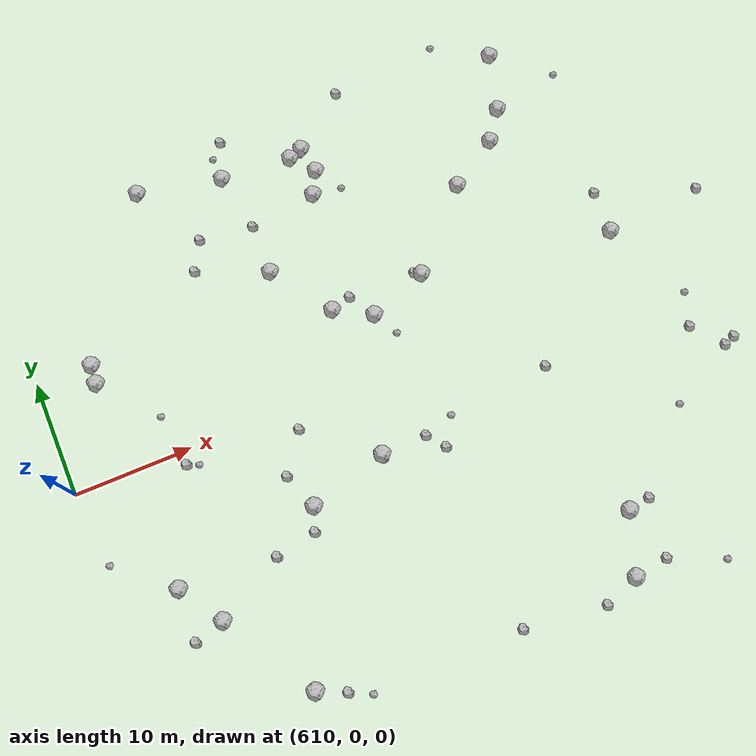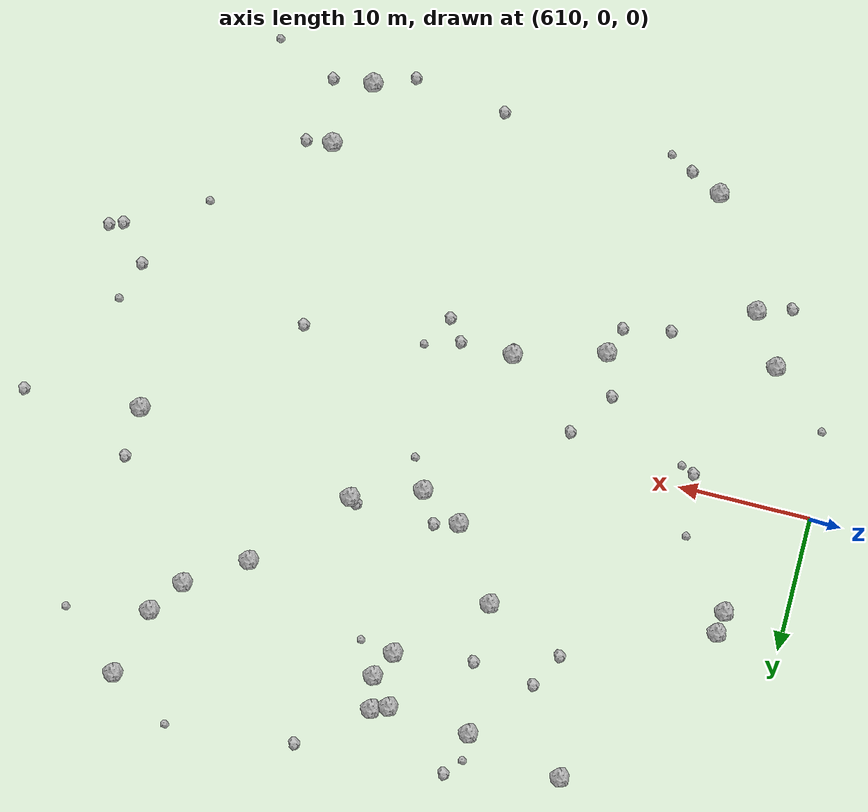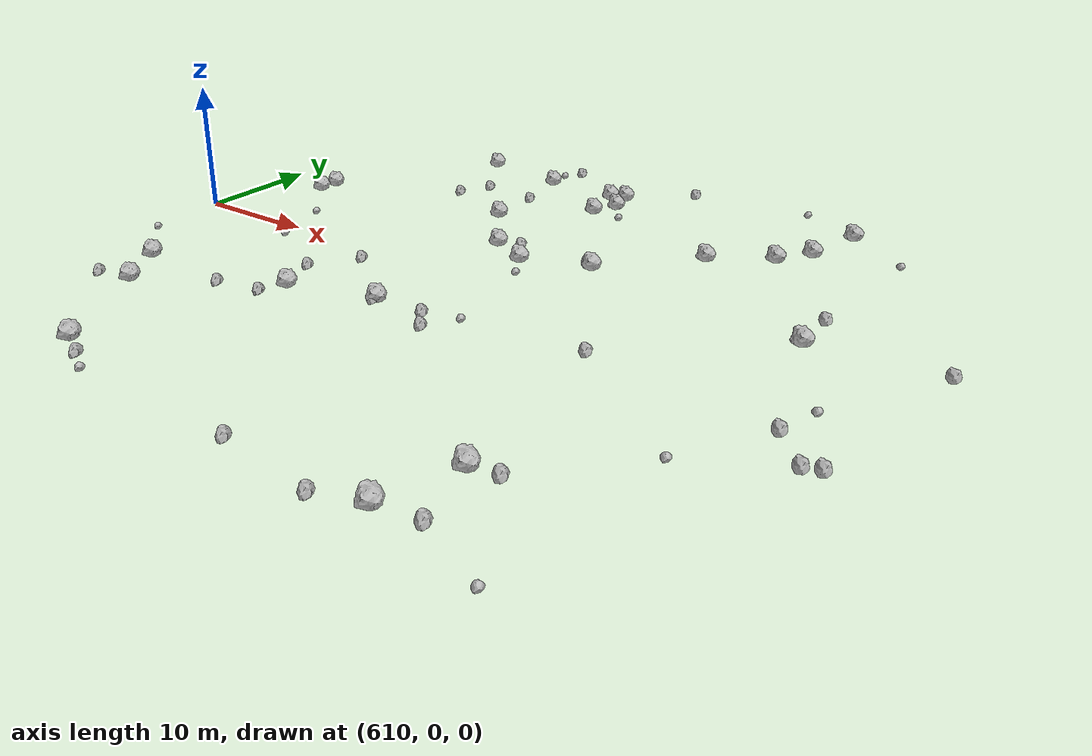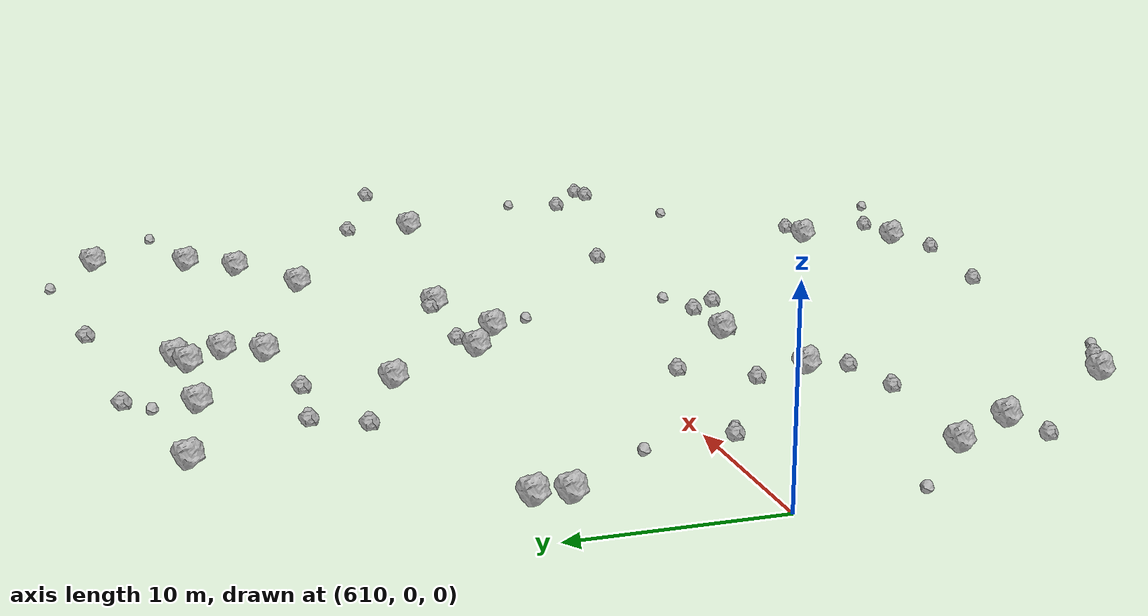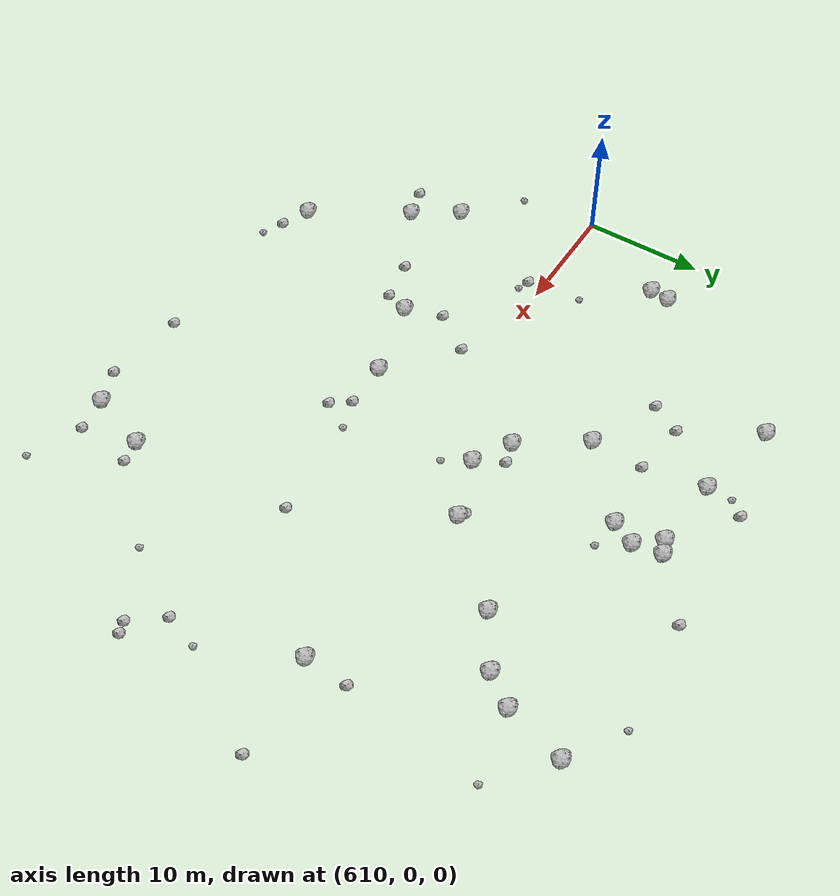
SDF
<sdf version="1.6">
 <world name="default">
  <include><uri>model://sun</uri></include>
  <model name="rock1_16_3">
   <include><uri>model://rock1</uri><pose>622.295095515033 -21.704970497905475 0.5 0 0 0</pose></include>
  </model>
  <model name="rock1_16_4">
   <include><uri>model://rock1</uri><pose>614.8171747376127 9.697612016632938 0.5 0 0 0</pose></include>
  </model>
  <model name="rock1_16_5">
   <include><uri>model://rock1</uri><pose>648.9462352174254 -23.498068695276615 0.5 0 0 0</pose></include>
  </model>
  <model name="rock1_16_6">
   <include><uri>model://rock1</uri><pose>638.1903014071623 21.202241193450952 0.5 0 0 0</pose></include>
  </model>
  <model name="rock1_16_7">
   <include><uri>model://rock1</uri><pose>638.5924197679703 18.78847032751029 0.5 0 0 0</pose></include>
  </model>
  <model name="rock1_16_8">
   <include><uri>model://rock1</uri><pose>655.6955451132926 18.02259966450044 0.5 0 0 0</pose></include>
  </model>
  <model name="rock1_16_9">
   <include><uri>model://rock1</uri><pose>659.908034896172 3.7215111262217135 0.5 0 0 0</pose></include>
  </model>
  <model name="rock1_16_10">
   <include><uri>model://rock1</uri><pose>649.4782589049813 12.724560329477356 0.5 0 0 0</pose></include>
  </model>
  <model name="rock1_16_11">
   <include><uri>model://rock1</uri><pose>643.3613716082834 6.453040932224873 0.5 0 0 0</pose></include>
  </model>
  <model name="rock1_16_12">
   <include><uri>model://rock1</uri><pose>623.488399011056 22.774658625735967 0.5 0 0 0</pose></include>
  </model>
  <model name="rock1_16_13">
   <include><uri>model://rock1</uri><pose>657.2058554879401 23.129753436059673 0.5 0 0 0</pose></include>
  </model>
  <model name="rock1_16_14">
   <include><uri>model://rock1</uri><pose>637.5505090332629 16.79710712094478 0.5 0 0 0</pose></include>
  </model>
  <model name="rock1_16_15">
   <include><uri>model://rock1</uri><pose>653.8123224668633 15.47216705870509 0.5 0 0 0</pose></include>
  </model>
  <model name="rock1_16_16">
   <include><uri>model://rock1</uri><pose>615.2324643129049 -10.321253683272896 0.5 0 0 0</pose></include>
  </model>
  <model name="rock1_16_17">
   <include><uri>model://rock1</uri><pose>634.233707809778 -6.599677934551874 0.5 0 0 0</pose></include>
  </model>
  <model name="rock1_16_18">
   <include><uri>model://rock1</uri><pose>638.2562460299648 4.6539196021090845 0.5 0 0 0</pose></include>
  </model>
  <model name="rock1_16_19">
   <include><uri>model://rock1</uri><pose>635.1348711004455 6.404301068159057 0.5 0 0 0</pose></include>
  </model>
  <model name="rock1_16_20">
   <include><uri>model://rock1</uri><pose>627.5310222287297 -8.377455034924964 0.5 0 0 0</pose></include>
  </model>
  <model name="rock1_16_21">
   <include><uri>model://rock1</uri><pose>617.5904729806289 -13.971249992122921 0.5 0 0 0</pose></include>
  </model>
  <model name="rock1_16_22">
   <include><uri>model://rock1</uri><pose>614.6545961982117 8.066638265184501 0.5 0 0 0</pose></include>
  </model>
  <model name="rock1_16_23">
   <include><uri>model://rock1</uri><pose>630.7758135038117 21.236438957676583 0.5 0 0 0</pose></include>
  </model>
  <model name="rock1_16_24">
   <include><uri>model://rock1</uri><pose>631.5328984835982 11.602905220710241 0.5 0 0 0</pose></include>
  </model>
  <model name="rock1_16_25">
   <include><uri>model://rock1</uri><pose>650.8204734556119 -18.533890565122064 0.5 0 0 0</pose></include>
  </model>
  <model name="rock1_16_26">
   <include><uri>model://rock1</uri><pose>636.9578594772764 20.73381331169044 0.5 0 0 0</pose></include>
  </model>
  <model name="rock2_16_0">
   <include><uri>model://rock2</uri><pose>631.6139251196646 16.099480754465922 0.3 0 0 0</pose></include>
  </model>
  <model name="rock2_16_1">
   <include><uri>model://rock2</uri><pose>662.304531344339 -6.562705666461813 0.3 0 0 0</pose></include>
  </model>
  <model name="rock2_16_2">
   <include><uri>model://rock2</uri><pose>619.1896663313574 -1.1938171927322436 0.3 0 0 0</pose></include>
  </model>
  <model name="rock2_16_3">
   <include><uri>model://rock2</uri><pose>628.713829190266 -2.027909234363541 0.3 0 0 0</pose></include>
  </model>
  <model name="rock2_16_4">
   <include><uri>model://rock2</uri><pose>626.9582780279923 16.711842583496036 0.3 0 0 0</pose></include>
  </model>
  <model name="rock2_16_5">
   <include><uri>model://rock2</uri><pose>634.167306150618 -6.892578304964864 0.3 0 0 0</pose></include>
  </model>
  <model name="rock2_16_6">
   <include><uri>model://rock2</uri><pose>660.1340952033312 7.486766323228679 0.3 0 0 0</pose></include>
  </model>
  <model name="rock2_16_7">
   <include><uri>model://rock2</uri><pose>625.5650922540495 14.185161840369531 0.3 0 0 0</pose></include>
  </model>
  <model name="rock2_16_8">
   <include><uri>model://rock2</uri><pose>636.8844415088956 6.944497947953195 0.3 0 0 0</pose></include>
  </model>
  <model name="rock2_16_9">
   <include><uri>model://rock2</uri><pose>638.1271490294871 -6.532658481535133 0.3 0 0 0</pose></include>
  </model>
  <model name="rock2_16_10">
   <include><uri>model://rock2</uri><pose>668.5176809604299 4.436364781949543 0.3 0 0 0</pose></include>
  </model>
  <model name="rock2_16_11">
   <include><uri>model://rock2</uri><pose>639.0175113546131 -23.70481028094528 0.3 0 0 0</pose></include>
  </model>
  <model name="rock2_16_12">
   <include><uri>model://rock2</uri><pose>651.8622135982934 -23.111248125402845 0.3 0 0 0</pose></include>
  </model>
  <model name="rock2_16_13">
   <include><uri>model://rock2</uri><pose>645.9313808465757 -24.602603488167112 0.3 0 0 0</pose></include>
  </model>
  <model name="rock2_16_14">
   <include><uri>model://rock2</uri><pose>614.9953872514536 -14.68902648563029 0.3 0 0 0</pose></include>
  </model>
  <model name="rock2_16_15">
   <include><uri>model://rock2</uri><pose>631.8173076749882 24.6120783420145 0.3 0 0 0</pose></include>
  </model>
  <model name="rock2_16_16">
   <include><uri>model://rock2</uri><pose>626.7839023228061 -10.32276829079639 0.3 0 0 0</pose></include>
  </model>
  <model name="rock2_16_17">
   <include><uri>model://rock2</uri><pose>652.7068347026162 -18.241949568150048 0.3 0 0 0</pose></include>
  </model>
  <model name="rock2_16_18">
   <include><uri>model://rock2</uri><pose>639.2818826694339 -8.057802836855341 0.3 0 0 0</pose></include>
  </model>
  <model name="rock2_16_19">
   <include><uri>model://rock2</uri><pose>626.3736150956205 -5.2743839913935275 0.3 0 0 0</pose></include>
  </model>
  <model name="rock2_16_20">
   <include><uri>model://rock2</uri><pose>649.657678231788 -5.009536354513525 0.3 0 0 0</pose></include>
  </model>
  <model name="rock2_16_21">
   <include><uri>model://rock2</uri><pose>623.2651572390849 -10.975122198206744 0.3 0 0 0</pose></include>
  </model>
  <model name="rock2_16_22">
   <include><uri>model://rock2</uri><pose>624.5700007042691 -22.76940225060477 0.3 0 0 0</pose></include>
  </model>
  <model name="rock2_16_23">
   <include><uri>model://rock2</uri><pose>642.7853531420591 6.825282108821078 0.3 0 0 0</pose></include>
  </model>
  <model name="rock2_16_24">
   <include><uri>model://rock2</uri><pose>664.3365772335053 -9.15792253093435 0.3 0 0 0</pose></include>
  </model>
  <model name="rock2_16_25">
   <include><uri>model://rock2</uri><pose>665.3432025782295 -8.792221972589548 0.3 0 0 0</pose></include>
  </model>
  <model name="rock2_16_26">
   <include><uri>model://rock2</uri><pose>643.0066284529431 25.08046436871306 0.3 0 0 0</pose></include>
  </model>
  <model name="rock3_16_0">
   <include><uri>model://rock3</uri><pose>640.7115735924062 -5.784255431038211 0.2 0 0 0</pose></include>
  </model>
  <model name="rock3_16_1">
   <include><uri>model://rock3</uri><pose>658.5231596144351 -12.27349760190728 0.2 0 0 0</pose></include>
  </model>
  <model name="rock3_16_2">
   <include><uri>model://rock3</uri><pose>637.853358567911 20.803788596086378 0.2 0 0 0</pose></include>
  </model>
  <model name="rock3_16_3">
   <include><uri>model://rock3</uri><pose>661.7355511458121 19.253704248098103 0.2 0 0 0</pose></include>
  </model>
  <model name="rock3_16_4">
   <include><uri>model://rock3</uri><pose>610.7132928643837 -6.484330882158712 0.2 0 0 0</pose></include>
  </model>
  <model name="rock3_16_5">
   <include><uri>model://rock3</uri><pose>640.0248901279888 16.468687568622187 0.2 0 0 0</pose></include>
  </model>
  <model name="rock3_16_6">
   <include><uri>model://rock3</uri><pose>630.6657746721912 23.334383193325387 0.2 0 0 0</pose></include>
  </model>
  <model name="rock3_16_7">
   <include><uri>model://rock3</uri><pose>626.2979012578314 -23.681585972724733 0.2 0 0 0</pose></include>
  </model>
  <model name="rock3_16_8">
   <include><uri>model://rock3</uri><pose>656.3141112464014 -25.104670042703496 0.2 0 0 0</pose></include>
  </model>
  <model name="rock3_16_9">
   <include><uri>model://rock3</uri><pose>618.5976336434649 3.355674433767142 0.2 0 0 0</pose></include>
  </model>
  <model name="rock3_16_10">
   <include><uri>model://rock3</uri><pose>620.1342252557687 -1.6183758211260866 0.2 0 0 0</pose></include>
  </model>
  <model name="rock3_16_11">
   <include><uri>model://rock3</uri><pose>639.3594658886651 2.46321606049068 0.2 0 0 0</pose></include>
  </model>
  <model name="rock3_16_12">
   <include><uri>model://rock3</uri><pose>663.3120308553114 -3.7096551108585203 0.2 0 0 0</pose></include>
  </model>
  <model name="rock3_16_13">
   <include><uri>model://rock3</uri><pose>652.594725893658 25.959494507462125 0.2 0 0 0</pose></include>
  </model>
 </world>
</sdf>
